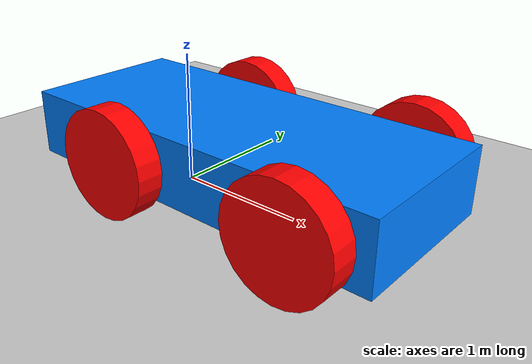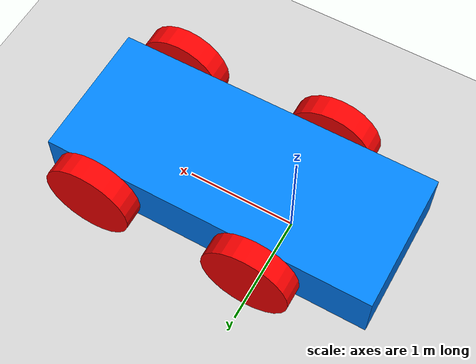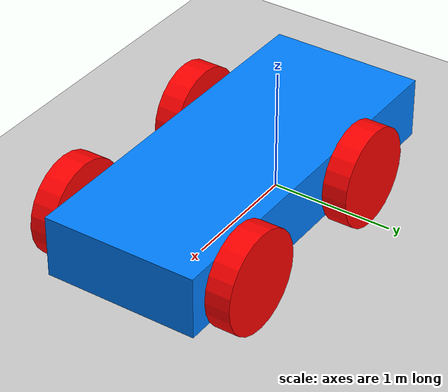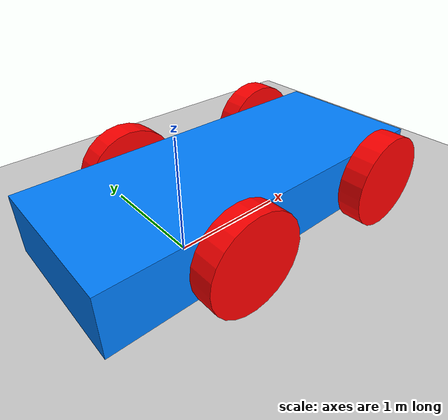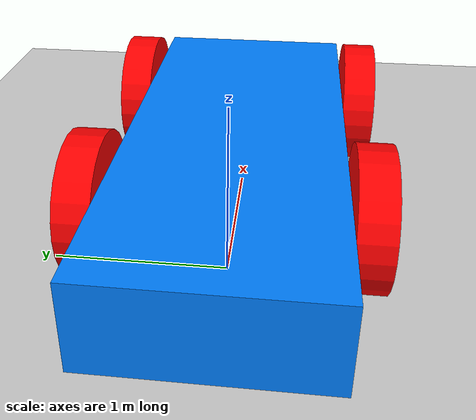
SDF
<?xml version="1.0" ?>
<sdf version="1.8">
    <world name="car_world">
        <physics name="1ms" type="ignored">
            <max_step_size>0.001</max_step_size>
            <real_time_factor>1.0</real_time_factor>
        </physics>
        <plugin
            filename="gz-sim-physics-system"
            name="gz::sim::systems::Physics">
        </plugin>
        <plugin
            filename="gz-sim-user-commands-system"
            name="gz::sim::systems::UserCommands">
        </plugin>
        <plugin
            filename="gz-sim-scene-broadcaster-system"
            name="gz::sim::systems::SceneBroadcaster">
        </plugin>

        <light type="directional" name="sun">
            <cast_shadows>true</cast_shadows>
            <pose>0 0 10 0 0 0</pose>
            <diffuse>0.8 0.8 0.8 1</diffuse>
            <specular>0.2 0.2 0.2 1</specular>
            <attenuation>
                <range>1000</range>
                <constant>0.9</constant>
                <linear>0.01</linear>
                <quadratic>0.001</quadratic>
            </attenuation>
            <direction>-0.5 0.1 -0.9</direction>
        </light>

        <model name="ground_plane">
            <static>true</static>
            <link name="link">
                <collision name="collision">
                <geometry>
                    <plane>
                    <normal>0 0 1</normal>
                    </plane>
                </geometry>
                </collision>
                <visual name="visual">
                <geometry>
                    <plane>
                    <normal>0 0 1</normal>
                    <size>100 100</size>
                    </plane>
                </geometry>
                <material>
                    <ambient>0.8 0.8 0.8 1</ambient>
                    <diffuse>0.8 0.8 0.8 1</diffuse>
                    <specular>0.8 0.8 0.8 1</specular>
                </material>
                </visual>
            </link>
        </model>

        <model name='vehicle_blue' canonical_link='chassis'>
            <pose relative_to='world'>0 0 0 0 0 0</pose>   <!--the pose is relative to the world by default-->

            <!--chassis-->
            <link name='chassis'>  <!-- canonical link-->
                <pose relative_to='__model__'>0.5 0 0.4 0 0 0</pose>
                <inertial> <!--inertial properties of the link mass, inertia matix-->
                    <mass>2.14395</mass>
                    <inertia>
                        <ixx>1.095329</ixx>
                        <ixy>0</ixy>
                        <ixz>0</ixz>
                        <iyy>1.381317</iyy>
                        <iyz>0</iyz>
                        <izz>1.476646</izz>
                    </inertia>
                </inertial>
                <visual name='visual'>
                    <geometry>
                        <box>
                            <size>3.0 1.25 0.5</size>
                        </box>
                    </geometry>
                    <!--Color of the link-->
                    <material>
                        <ambient>0.0 0.5 1.0 1</ambient>
                        <diffuse>0.0 0.5 1.0 1</diffuse>
                        <specular>0.0 0.5 1.0 1</specular>
                    </material>
                </visual>
                <collision name='collision'>
                    <geometry>
                        <box>
                            <size>3.0 1.25 0.5</size>
                        </box>
                    </geometry>
                </collision>
            </link>

            <!--Left wheel-->
            <link name='left_wheel'>
                <pose relative_to="chassis">-0.5 0.75 0 -1.5707 0 0</pose> <!--angles are in radian-->
                <inertial>
                    <mass>1</mass>
                    <inertia>
                        <ixx>0.043333</ixx>
                        <ixy>0</ixy>
                        <ixz>0</ixz>
                        <iyy>0.043333</iyy>
                        <iyz>0</iyz>
                        <izz>0.08</izz>
                    </inertia>
                </inertial>
                <visual name='visual'>
                    <geometry>
                        <cylinder>
                            <radius>0.4</radius>
                            <length>0.2</length>
                        </cylinder>
                    </geometry>
                    <material>
                        <ambient>1.0 0.0 0.0 1</ambient>
                        <diffuse>1.0 0.0 0.0 1</diffuse>
                        <specular>1.0 0.0 0.0 1</specular>
                    </material>
                </visual>
                <collision name='collision'>
                    <geometry>
                        <cylinder>
                            <radius>0.4</radius>
                            <length>0.2</length>
                        </cylinder>
                    </geometry>
                </collision>
            </link>

            <!--Left aft wheel-->
            <link name='left_front_wheel'>
                <pose relative_to="chassis">1.0 0.75 0 -1.5707 0 0</pose>
                <inertial>
                    <mass>1</mass>
                    <inertia>
                        <ixx>0.043333</ixx>
                        <ixy>0</ixy>
                        <ixz>0</ixz>
                        <iyy>0.043333</iyy>
                        <iyz>0</iyz>
                        <izz>0.08</izz>
                    </inertia>
                </inertial>
                <visual name='visual'>
                    <geometry>
                        <cylinder>
                            <radius>0.4</radius>
                            <length>0.2</length>
                        </cylinder>
                    </geometry>
                    <material>
                        <ambient>1.0 0.0 0.0 1</ambient>
                        <diffuse>1.0 0.0 0.0 1</diffuse>
                        <specular>1.0 0.0 0.0 1</specular>
                    </material>
                </visual>
                <collision name='collision'>
                    <geometry>
                        <cylinder>
                            <radius>0.4</radius>
                            <length>0.2</length>
                        </cylinder>
                    </geometry>
                </collision>
            </link>
            <!--The same as left wheel but with different position-->
            <link name='right_wheel'>
                <pose relative_to="chassis">-0.5 -0.75 0 -1.5707 0 0</pose> <!--angles are in radian-->
                <inertial>
                    <mass>1</mass>
                    <inertia>
                        <ixx>0.043333</ixx>
                        <ixy>0</ixy>
                        <ixz>0</ixz>
                        <iyy>0.043333</iyy>
                        <iyz>0</iyz>
                        <izz>0.08</izz>
                    </inertia>
                </inertial>
                <visual name='visual'>
                    <geometry>
                        <cylinder>
                            <radius>0.4</radius>
                            <length>0.2</length>
                        </cylinder>
                    </geometry>
                    <material>
                        <ambient>1.0 0.0 0.0 1</ambient>
                        <diffuse>1.0 0.0 0.0 1</diffuse>
                        <specular>1.0 0.0 0.0 1</specular>
                    </material>
                </visual>
                <collision name='collision'>
                    <geometry>
                        <cylinder>
                            <radius>0.4</radius>
                            <length>0.2</length>
                        </cylinder>
                    </geometry>
                </collision>
            </link>

            <link name='right_front_wheel'>
                <pose relative_to="chassis">1.0 -0.75 0 -1.5707 0 0</pose> <!--angles are in radian-->
                <inertial>
                    <mass>1</mass>
                    <inertia>
                        <ixx>0.043333</ixx>
                        <ixy>0</ixy>
                        <ixz>0</ixz>
                        <iyy>0.043333</iyy>
                        <iyz>0</iyz>
                        <izz>0.08</izz>
                    </inertia>
                </inertial>
                <visual name='visual'>
                    <geometry>
                        <cylinder>
                            <radius>0.4</radius>
                            <length>0.2</length>
                        </cylinder>
                    </geometry>
                    <material>
                        <ambient>1.0 0.0 0.0 1</ambient>
                        <diffuse>1.0 0.0 0.0 1</diffuse>
                        <specular>1.0 0.0 0.0 1</specular>
                    </material>
                </visual>
                <collision name='collision'>
                    <geometry>
                        <cylinder>
                            <radius>0.4</radius>
                            <length>0.2</length>
                        </cylinder>
                    </geometry>
                </collision>
            </link>

                        <!--diff drive plugin-->
            <plugin
                filename="gz-sim-diff-drive-system"
                name="gz::sim::systems::DiffDrive">
                <left_joint>left_wheel_joint</left_joint>
                <right_joint>right_wheel_joint</right_joint>
                <wheel_separation>1.2</wheel_separation>
                <wheel_radius>0.4</wheel_radius>
                <odom_publish_frequency>1</odom_publish_frequency>
                <topic>cmd_vel</topic>
            </plugin>

            <!--arbitrary frame-->
            <frame name="caster_frame" attached_to='chassis'>
                <pose>0.8 0 -0.2 0 0 0</pose>
            </frame>

            <!--caster wheel-->
            <link name='caster'>
                <pose relative_to='caster_frame'/>
                <inertial>
                    <mass>1</mass>
                    <inertia>
                        <ixx>0.016</ixx>
                        <ixy>0</ixy>
                        <ixz>0</ixz>
                        <iyy>0.016</iyy>
                        <iyz>0</iyz>
                        <izz>0.016</izz>
                    </inertia>
                </inertial>
                <visual name='visual'>
                    <geometry>
                        <sphere>
                            <radius>0.2</radius>
                        </sphere>
                    </geometry>
                    <material>
                        <ambient>0.0 1 0.0 1</ambient>
                        <diffuse>0.0 1 0.0 1</diffuse>
                        <specular>0.0 1 0.0 1</specular>
                    </material>
                </visual>
                <collision name='collision'>
                    <geometry>
                        <sphere>
                            <radius>0.2</radius>
                        </sphere>
                    </geometry>
                </collision>
            </link>

            <!--left wheel joint-->
            <joint name='left_wheel_joint' type='revolute'>
                <pose relative_to='left_wheel'/>
                <parent>chassis</parent>
                <child>left_wheel</child>
                <axis>
                    <xyz expressed_in='__model__'>0 1 0</xyz> <!--can be descired to any frame or even arbitrary frames-->
                    <limit>
                        <lower>-1.79769e+308</lower>    <!--negative infinity-->
                        <upper>1.79769e+308</upper>     <!--positive infinity-->
                    </limit>
                </axis>
            </joint>

            <!--left f wheel joint-->
            <joint name='left_f_wheel_joint' type='revolute'>
                <pose relative_to='left_front_wheel'/>
                <parent>chassis</parent>
                <child>left_front_wheel</child>
                <axis>
                    <xyz expressed_in='__model__'>0 1 0</xyz> <!--can be descired to any frame or even arbitrary frames-->
                    <limit>
                        <lower>-1.79769e+308</lower>    <!--negative infinity-->
                        <upper>1.79769e+308</upper>     <!--positive infinity-->
                    </limit>
                </axis>
            </joint>

            <!--right wheel joint-->
            <joint name='right_wheel_joint' type='revolute'>
                <pose relative_to='right_wheel'/>
                <parent>chassis</parent>
                <child>right_wheel</child>
                <axis>
                    <xyz expressed_in='__model__'>0 1 0</xyz>
                    <limit>
                        <lower>-1.79769e+308</lower>    <!--negative infinity-->
                        <upper>1.79769e+308</upper>     <!--positive infinity-->
                    </limit>
                </axis>
            </joint>

            <!--right f wheel joint-->
            <joint name='right_f_wheel_joint' type='revolute'>
                <pose relative_to='right_front_wheel'/>
                <parent>chassis</parent>
                <child>right_front_wheel</child>
                <axis>
                    <xyz expressed_in='__model__'>0 1 0</xyz> <!--can be descired to any frame or even arbitrary frames-->
                    <limit>
                        <lower>-1.79769e+308</lower>    <!--negative infinity-->
                        <upper>1.79769e+308</upper>     <!--positive infinity-->
                    </limit>
                </axis>
            </joint>

                    <!-- Moving Left-->
        <plugin filename="gz-sim-triggered-publisher-system"
                name="gz::sim::systems::TriggeredPublisher">
            <input type="gz.msgs.Int32" topic="/keyboard/keypress">
                <match field="data">16777234</match>
            </input>
            <output type="gz.msgs.Twist" topic="/cmd_vel">
                linear: {x: 0.0}, angular: {z: 0.5}
            </output>
        </plugin>
        <!-- Moving Forward-->
        <plugin filename="gz-sim-triggered-publisher-system"
                name="gz::sim::systems::TriggeredPublisher">
            <input type="gz.msgs.Int32" topic="/keyboard/keypress">
                <match field="data">16777235</match>
            </input>
            <output type="gz.msgs.Twist" topic="/cmd_vel">
                linear: {x: 0.5}, angular: {z: 0.0}
            </output>
        </plugin>
        <!-- Moving Right-->
        <plugin filename="gz-sim-triggered-publisher-system"
                name="gz::sim::systems::TriggeredPublisher">
            <input type="gz.msgs.Int32" topic="/keyboard/keypress">
                <match field="data">16777236</match>
            </input>
            <output type="gz.msgs.Twist" topic="/cmd_vel">
                linear: {x: 0.0}, angular: {z: -0.5}
            </output>
        </plugin>
        <!-- Moving Backward-->
        <plugin filename="gz-sim-triggered-publisher-system"
                name="gz::sim::systems::TriggeredPublisher">
            <input type="gz.msgs.Int32" topic="/keyboard/keypress">
                <match field="data">16777237</match>
            </input>
            <output type="gz.msgs.Twist" topic="/cmd_vel">
                linear: {x: -0.5}, angular: {z: 0.0}
            </output>
        </plugin>
            <!--caster wheel joint--> <!--pose defult value is the child-->
            <joint name='caster_wheel' type='ball'>
                <parent>chassis</parent>
                <child>caster</child>
            </joint>
        </model>
</world>
</sdf>
